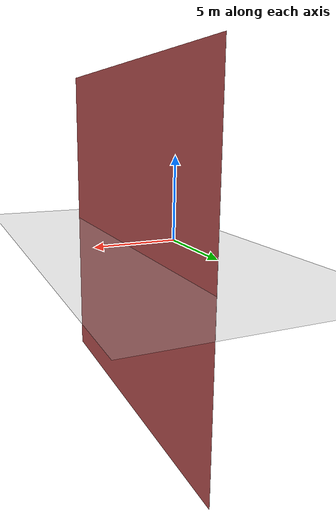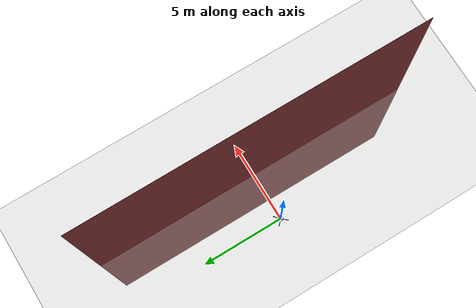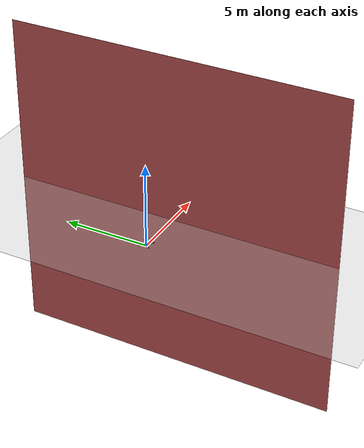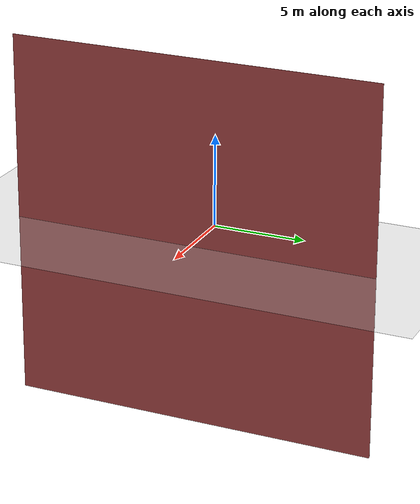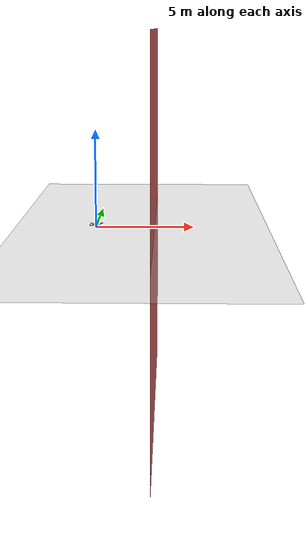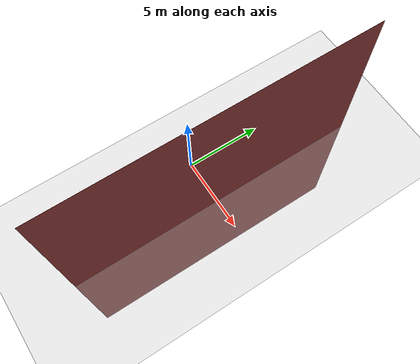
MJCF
<mujoco model="mapping_drone">
    <compiler angle="degree" coordinate="local"/>
    <option gravity="0 0 -9.81"/>

    <!--Defining Colors-->
    <asset>
        <material name="black" rgba="0.1 0.1 0.1 1"/>
        <material name="blue" rgba="0.2 0.2 0.8 1"/>
        <material name="red" rgba="0.8 0.1 0.1 1"/>
        <material name="green" rgba="0.1 0.8 0.1 1"/>
        <material name="wall" rgba="0.7 0.3 0.3 1"/>
    </asset>

    <worldbody>
        <!-- Ground Plane -->
        <geom name="floor" type="plane" size="20 20 0.1" rgba="0.8 0.8 0.8 1" friction="1.0 0.1 0.1"/>
        <light directional="true" diffuse="0.8 0.8 0.8" pos="0 0 5" dir="0 0 -1"/>

        <!-- Wall at X = 3m for Single-point sensor object detection -->
        <geom name="obstacle_wall" type="plane" pos="3.0 0 0" zaxis="-1 0 0" size="10 10 0.1" material="wall"/>

        <!-- Drone Body -->
        <body name="drone" pos="0 0 0.12">

            <!--Adding mobility-->
            <freejoint name="root"/>

            <!-- Center body, 28cm diameter, 11cm height, 1.966 kg weight -->
            <geom name="fuselage" type="cylinder" size="0.14 0.055" mass="1.966" material="blue"/>

            <!-- Landing legs (used cylinders rather than modelling the current Sky claw legs), total 0.04 kg, 3cm off ground-->
            <geom name="leg_fr" type="cylinder" pos=" 0.10  0.10 -0.07" size="0.008 0.02" mass="0.01" material="black"/>
            <geom name="leg_fl" type="cylinder" pos="-0.10  0.10 -0.07" size="0.008 0.02" mass="0.01" material="black"/>
            <geom name="leg_bl" type="cylinder" pos="-0.10 -0.10 -0.07" size="0.008 0.02" mass="0.01" material="black"/>
            <geom name="leg_br" type="cylinder" pos=" 0.10 -0.10 -0.07" size="0.008 0.02" mass="0.01" material="black"/>

            <!-- Propeller Arms, total 0.32 kg -->
            <geom name="arm_fr" type="cylinder" fromto="0 0 0   0.297  0.297 0" size="0.015" mass="0.08" material="black"/>
            <geom name="arm_fl" type="cylinder" fromto="0 0 0  -0.297  0.297 0" size="0.015" mass="0.08" material="black"/>
            <geom name="arm_bl" type="cylinder" fromto="0 0 0  -0.297 -0.297 0" size="0.015" mass="0.08" material="black"/>
            <geom name="arm_br" type="cylinder" fromto="0 0 0   0.297 -0.297 0" size="0.015" mass="0.08" material="black"/>

            <!-- Motors, total 0.32kg -->
            <geom name="motor_fr" type="cylinder" pos=" 0.297  0.297 0.02" size="0.035 0.01" mass="0.08" material="red"/>
            <geom name="motor_fl" type="cylinder" pos="-0.297  0.297 0.02" size="0.035 0.01" mass="0.08" material="green"/>
            <geom name="motor_bl" type="cylinder" pos="-0.297 -0.297 0.02" size="0.035 0.01" mass="0.08" material="green"/>
            <geom name="motor_br" type="cylinder" pos=" 0.297 -0.297 0.02" size="0.035 0.01" mass="0.08" material="green"/>

            <!-- Thrust Sites -->
            <site name="site_fr" pos=" 0.297  0.297 0.02" size="0.01" rgba="0 0 0 0"/>
            <site name="site_fl" pos="-0.297  0.297 0.02" size="0.01" rgba="0 0 0 0"/>
            <site name="site_bl" pos="-0.297 -0.297 0.02" size="0.01" rgba="0 0 0 0"/>
            <site name="site_br" pos=" 0.297 -0.297 0.02" size="0.01" rgba="0 0 0 0"/>

            <!-- Sensor Sites -->
            <site name="gps_site" pos="0 0 0.055" size="0.01" rgba="1 1 1 1"/>
            <site name="single_point_site" pos="0.14 0 0" zaxis="1 0 0" size="0.01" rgba="1 1 0 1"/>
            <site name="lidar_site" pos="0 0 -0.055" zaxis="0 0 -1" size="0.01" rgba="1 0 0 1"/>

            <!-- Cameras -->
            <!-- RGB Camera: Forward-looking -->
            <camera name="rgb_camera" pos="0.14 0 0" zaxis="1 0 0" fovy="60"/>

            <!-- Thermal Camera: Downward-looking -->
            <camera name="flir_camera" pos="0 0.04 -0.055" zaxis="0 0 -1" fovy="60"/>

            <!-- LiDAR Camera: Downward-looking -->
            <camera name="lidar_downward" pos="0 -0.04 -0.055" zaxis="0 0 -1" fovy="90"/>
        </body>
    </worldbody>

    <!-- Thrusters, 0-20N, all force along z axis, torque from rotors should cancel out  -->
    <actuator>
        <motor name="act_fr" site="site_fr" gear="0 0 1 0 0 -0.02" ctrlrange="0 20"/>
        <motor name="act_fl" site="site_fl" gear="0 0 1 0 0  0.02" ctrlrange="0 20"/>
        <motor name="act_bl" site="site_bl" gear="0 0 1 0 0 -0.02" ctrlrange="0 20"/>
        <motor name="act_br" site="site_br" gear="0 0 1 0 0  0.02" ctrlrange="0 20"/>
    </actuator>

    <!-- Sensors -->
    <sensor>
        <framepos name="gps_pos" objtype="site" objname="gps_site"/>
        <rangefinder name="single_point_dist" site="single_point_site" cutoff="10"/>
        <rangefinder name="lidar_dist" site="lidar_site" cutoff="10"/>
    </sensor>
</mujoco>
